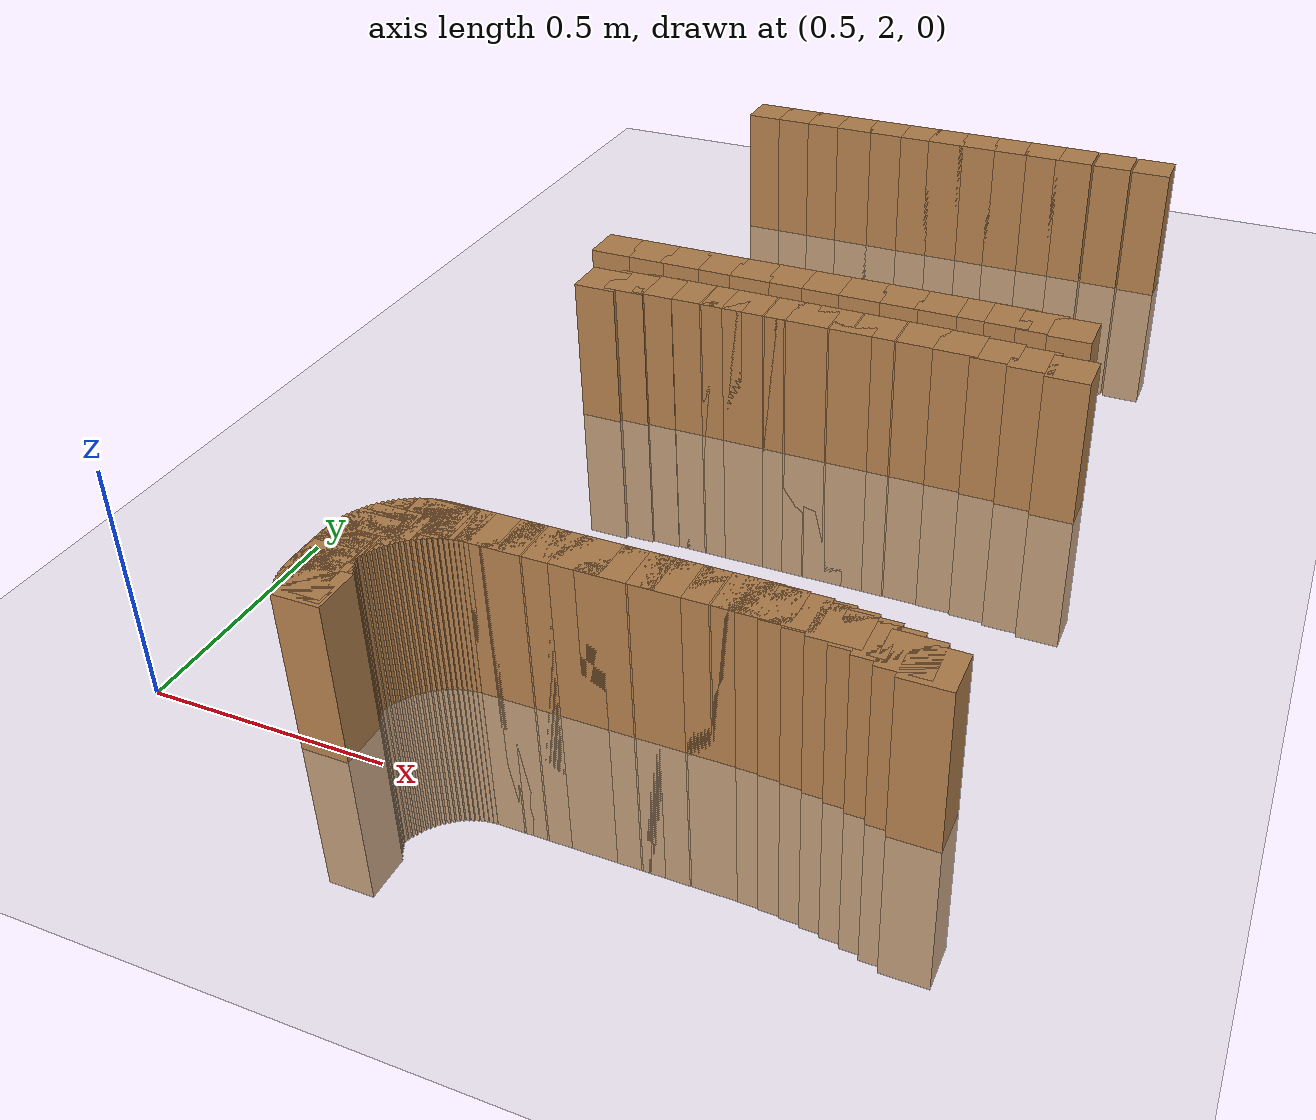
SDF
<sdf version="1.6">
 <world name="default">
  <model name="ground_plane">
   <static>1</static>
   <link name="link">
    <collision name="collision">
     <geometry><plane><normal>0 0 1</normal><size>100 100</size></plane></geometry>
     <surface><friction><ode><mu>100</mu><mu2>50</mu2></ode></friction></surface>
    </collision>
    <visual name="visual">
     <cast_shadows>0</cast_shadows>
     <geometry><plane><normal>0 0 1</normal><size>100 100</size></plane></geometry>
     <material>
      <script><uri>file://media/materials/scripts/gazebo.material</uri><name>Gazebo/Grey</name></script>
     </material>
    </visual>
   </link>
  </model>
  <model name="track">
   <link name="inner_133">
    <pose>0.815717 3.264747 0.000000 0 -0 0</pose>
    <collision name="collision"><geometry><box><size>0.1 0.1 0.7</size></box></geometry></collision>
    <visual name="visual">
     <geometry><box><size>0.1 0.1 0.7</size></box></geometry>
     <material>
      <script><uri>file://media/materials/scripts/gazebo.material</uri><name>Gazebo/Wood</name></script>
     </material>
    </visual>
   </link>
   <link name="inner_134">
    <pose>0.885120 3.275310 0.000000 0 -0 0</pose>
    <collision name="collision"><geometry><box><size>0.1 0.1 0.7</size></box></geometry></collision>
    <visual name="visual">
     <geometry><box><size>0.1 0.1 0.7</size></box></geometry>
     <material>
      <script><uri>file://media/materials/scripts/gazebo.material</uri><name>Gazebo/Wood</name></script>
     </material>
    </visual>
   </link>
   <link name="inner_135">
    <pose>0.955033 3.281663 0.000000 0 -0 0</pose>
    <collision name="collision"><geometry><box><size>0.1 0.1 0.7</size></box></geometry></collision>
    <visual name="visual">
     <geometry><box><size>0.1 0.1 0.7</size></box></geometry>
     <material>
      <script><uri>file://media/materials/scripts/gazebo.material</uri><name>Gazebo/Wood</name></script>
     </material>
    </visual>
   </link>
   <link name="inner_136">
    <pose>1.025203 3.283784 0.000000 0 -0 0</pose>
    <collision name="collision"><geometry><box><size>0.1 0.1 0.7</size></box></geometry></collision>
    <visual name="visual">
     <geometry><box><size>0.1 0.1 0.7</size></box></geometry>
     <material>
      <script><uri>file://media/materials/scripts/gazebo.material</uri><name>Gazebo/Wood</name></script>
     </material>
    </visual>
   </link>
   <link name="inner_137">
    <pose>1.076966 3.283784 0.000000 0 -0 0</pose>
    <collision name="collision"><geometry><box><size>0.1 0.1 0.7</size></box></geometry></collision>
    <visual name="visual">
     <geometry><box><size>0.1 0.1 0.7</size></box></geometry>
     <material>
      <script><uri>file://media/materials/scripts/gazebo.material</uri><name>Gazebo/Wood</name></script>
     </material>
    </visual>
   </link>
   <link name="inner_138">
    <pose>1.128729 3.283784 0.000000 0 -0 0</pose>
    <collision name="collision"><geometry><box><size>0.1 0.1 0.7</size></box></geometry></collision>
    <visual name="visual">
     <geometry><box><size>0.1 0.1 0.7</size></box></geometry>
     <material>
      <script><uri>file://media/materials/scripts/gazebo.material</uri><name>Gazebo/Wood</name></script>
     </material>
    </visual>
   </link>
   <link name="inner_139">
    <pose>1.180491 3.283784 0.000000 0 -0 0</pose>
    <collision name="collision"><geometry><box><size>0.1 0.1 0.7</size></box></geometry></collision>
    <visual name="visual">
     <geometry><box><size>0.1 0.1 0.7</size></box></geometry>
     <material>
      <script><uri>file://media/materials/scripts/gazebo.material</uri><name>Gazebo/Wood</name></script>
     </material>
    </visual>
   </link>
   <link name="inner_140">
    <pose>1.232254 3.283784 0.000000 0 -0 0</pose>
    <collision name="collision"><geometry><box><size>0.1 0.1 0.7</size></box></geometry></collision>
    <visual name="visual">
     <geometry><box><size>0.1 0.1 0.7</size></box></geometry>
     <material>
      <script><uri>file://media/materials/scripts/gazebo.material</uri><name>Gazebo/Wood</name></script>
     </material>
    </visual>
   </link>
   <link name="inner_141">
    <pose>1.284017 3.283784 0.000000 0 -0 0</pose>
    <collision name="collision"><geometry><box><size>0.1 0.1 0.7</size></box></geometry></collision>
    <visual name="visual">
     <geometry><box><size>0.1 0.1 0.7</size></box></geometry>
     <material>
      <script><uri>file://media/materials/scripts/gazebo.material</uri><name>Gazebo/Wood</name></script>
     </material>
    </visual>
   </link>
   <link name="inner_142">
    <pose>1.335780 3.283784 0.000000 0 -0 0</pose>
    <collision name="collision"><geometry><box><size>0.1 0.1 0.7</size></box></geometry></collision>
    <visual name="visual">
     <geometry><box><size>0.1 0.1 0.7</size></box></geometry>
     <material>
      <script><uri>file://media/materials/scripts/gazebo.material</uri><name>Gazebo/Wood</name></script>
     </material>
    </visual>
   </link>
   <link name="inner_143">
    <pose>1.387543 3.283784 0.000000 0 -0 0</pose>
    <collision name="collision"><geometry><box><size>0.1 0.1 0.7</size></box></geometry></collision>
    <visual name="visual">
     <geometry><box><size>0.1 0.1 0.7</size></box></geometry>
     <material>
      <script><uri>file://media/materials/scripts/gazebo.material</uri><name>Gazebo/Wood</name></script>
     </material>
    </visual>
   </link>
   <link name="inner_144">
    <pose>1.439306 3.283784 0.000000 0 -0 0</pose>
    <collision name="collision"><geometry><box><size>0.1 0.1 0.7</size></box></geometry></collision>
    <visual name="visual">
     <geometry><box><size>0.1 0.1 0.7</size></box></geometry>
     <material>
      <script><uri>file://media/materials/scripts/gazebo.material</uri><name>Gazebo/Wood</name></script>
     </material>
    </visual>
   </link>
   <link name="inner_145">
    <pose>1.491069 3.283784 0.000000 0 -0 0</pose>
    <collision name="collision"><geometry><box><size>0.1 0.1 0.7</size></box></geometry></collision>
    <visual name="visual">
     <geometry><box><size>0.1 0.1 0.7</size></box></geometry>
     <material>
      <script><uri>file://media/materials/scripts/gazebo.material</uri><name>Gazebo/Wood</name></script>
     </material>
    </visual>
   </link>
   <link name="inner_146">
    <pose>1.542832 3.283784 0.000000 0 -0 0</pose>
    <collision name="collision"><geometry><box><size>0.1 0.1 0.7</size></box></geometry></collision>
    <visual name="visual">
     <geometry><box><size>0.1 0.1 0.7</size></box></geometry>
     <material>
      <script><uri>file://media/materials/scripts/gazebo.material</uri><name>Gazebo/Wood</name></script>
     </material>
    </visual>
   </link>
   <link name="inner_147">
    <pose>1.594595 3.283784 0.000000 0 -0 0</pose>
    <collision name="collision"><geometry><box><size>0.1 0.1 0.7</size></box></geometry></collision>
    <visual name="visual">
     <geometry><box><size>0.1 0.1 0.7</size></box></geometry>
     <material>
      <script><uri>file://media/materials/scripts/gazebo.material</uri><name>Gazebo/Wood</name></script>
     </material>
    </visual>
   </link>
   <link name="inner_148">
    <pose>1.678391 3.282096 0.000000 0 -0 0</pose>
    <collision name="collision"><geometry><box><size>0.1 0.1 0.7</size></box></geometry></collision>
    <visual name="visual">
     <geometry><box><size>0.1 0.1 0.7</size></box></geometry>
     <material>
      <script><uri>file://media/materials/scripts/gazebo.material</uri><name>Gazebo/Wood</name></script>
     </material>
    </visual>
   </link>
   <link name="inner_149">
    <pose>1.762052 3.277035 0.000000 0 -0 0</pose>
    <collision name="collision"><geometry><box><size>0.1 0.1 0.7</size></box></geometry></collision>
    <visual name="visual">
     <geometry><box><size>0.1 0.1 0.7</size></box></geometry>
     <material>
      <script><uri>file://media/materials/scripts/gazebo.material</uri><name>Gazebo/Wood</name></script>
     </material>
    </visual>
   </link>
   <link name="inner_150">
    <pose>1.845441 3.268610 0.000000 0 -0 0</pose>
    <collision name="collision"><geometry><box><size>0.1 0.1 0.7</size></box></geometry></collision>
    <visual name="visual">
     <geometry><box><size>0.1 0.1 0.7</size></box></geometry>
     <material>
      <script><uri>file://media/materials/scripts/gazebo.material</uri><name>Gazebo/Wood</name></script>
     </material>
    </visual>
   </link>
   <link name="inner_151">
    <pose>1.928423 3.256834 0.000000 0 -0 0</pose>
    <collision name="collision"><geometry><box><size>0.1 0.1 0.7</size></box></geometry></collision>
    <visual name="visual">
     <geometry><box><size>0.1 0.1 0.7</size></box></geometry>
     <material>
      <script><uri>file://media/materials/scripts/gazebo.material</uri><name>Gazebo/Wood</name></script>
     </material>
    </visual>
   </link>
   <link name="inner_607">
    <pose>1.892099 3.435087 0.000000 0 -0 0</pose>
    <collision name="collision"><geometry><box><size>0.1 0.1 0.7</size></box></geometry></collision>
    <visual name="visual">
     <geometry><box><size>0.1 0.1 0.7</size></box></geometry>
     <material>
      <script><uri>file://media/materials/scripts/gazebo.material</uri><name>Gazebo/Wood</name></script>
     </material>
    </visual>
   </link>
   <link name="inner_608">
    <pose>1.820092 3.441118 0.000000 0 -0 0</pose>
    <collision name="collision"><geometry><box><size>0.1 0.1 0.7</size></box></geometry></collision>
    <visual name="visual">
     <geometry><box><size>0.1 0.1 0.7</size></box></geometry>
     <material>
      <script><uri>file://media/materials/scripts/gazebo.material</uri><name>Gazebo/Wood</name></script>
     </material>
    </visual>
   </link>
   <link name="inner_609">
    <pose>1.747924 3.444739 0.000000 0 -0 0</pose>
    <collision name="collision"><geometry><box><size>0.1 0.1 0.7</size></box></geometry></collision>
    <visual name="visual">
     <geometry><box><size>0.1 0.1 0.7</size></box></geometry>
     <material>
      <script><uri>file://media/materials/scripts/gazebo.material</uri><name>Gazebo/Wood</name></script>
     </material>
    </visual>
   </link>
   <link name="inner_610">
    <pose>1.675676 3.445946 0.000000 0 -0 0</pose>
    <collision name="collision"><geometry><box><size>0.1 0.1 0.7</size></box></geometry></collision>
    <visual name="visual">
     <geometry><box><size>0.1 0.1 0.7</size></box></geometry>
     <material>
      <script><uri>file://media/materials/scripts/gazebo.material</uri><name>Gazebo/Wood</name></script>
     </material>
    </visual>
   </link>
   <link name="inner_611">
    <pose>1.584797 3.445946 0.000000 0 -0 0</pose>
    <collision name="collision"><geometry><box><size>0.1 0.1 0.7</size></box></geometry></collision>
    <visual name="visual">
     <geometry><box><size>0.1 0.1 0.7</size></box></geometry>
     <material>
      <script><uri>file://media/materials/scripts/gazebo.material</uri><name>Gazebo/Wood</name></script>
     </material>
    </visual>
   </link>
   <link name="inner_612">
    <pose>1.493919 3.445946 0.000000 0 -0 0</pose>
    <collision name="collision"><geometry><box><size>0.1 0.1 0.7</size></box></geometry></collision>
    <visual name="visual">
     <geometry><box><size>0.1 0.1 0.7</size></box></geometry>
     <material>
      <script><uri>file://media/materials/scripts/gazebo.material</uri><name>Gazebo/Wood</name></script>
     </material>
    </visual>
   </link>
   <link name="inner_613">
    <pose>1.403041 3.445946 0.000000 0 -0 0</pose>
    <collision name="collision"><geometry><box><size>0.1 0.1 0.7</size></box></geometry></collision>
    <visual name="visual">
     <geometry><box><size>0.1 0.1 0.7</size></box></geometry>
     <material>
      <script><uri>file://media/materials/scripts/gazebo.material</uri><name>Gazebo/Wood</name></script>
     </material>
    </visual>
   </link>
   <link name="inner_614">
    <pose>1.312162 3.445946 0.000000 0 -0 0</pose>
    <collision name="collision"><geometry><box><size>0.1 0.1 0.7</size></box></geometry></collision>
    <visual name="visual">
     <geometry><box><size>0.1 0.1 0.7</size></box></geometry>
     <material>
      <script><uri>file://media/materials/scripts/gazebo.material</uri><name>Gazebo/Wood</name></script>
     </material>
    </visual>
   </link>
   <link name="inner_615">
    <pose>1.221284 3.445946 0.000000 0 -0 0</pose>
    <collision name="collision"><geometry><box><size>0.1 0.1 0.7</size></box></geometry></collision>
    <visual name="visual">
     <geometry><box><size>0.1 0.1 0.7</size></box></geometry>
     <material>
      <script><uri>file://media/materials/scripts/gazebo.material</uri><name>Gazebo/Wood</name></script>
     </material>
    </visual>
   </link>
   <link name="inner_616">
    <pose>1.130405 3.445946 0.000000 0 -0 0</pose>
    <collision name="collision"><geometry><box><size>0.1 0.1 0.7</size></box></geometry></collision>
    <visual name="visual">
     <geometry><box><size>0.1 0.1 0.7</size></box></geometry>
     <material>
      <script><uri>file://media/materials/scripts/gazebo.material</uri><name>Gazebo/Wood</name></script>
     </material>
    </visual>
   </link>
   <link name="inner_617">
    <pose>1.039527 3.445946 0.000000 0 -0 0</pose>
    <collision name="collision"><geometry><box><size>0.1 0.1 0.7</size></box></geometry></collision>
    <visual name="visual">
     <geometry><box><size>0.1 0.1 0.7</size></box></geometry>
     <material>
      <script><uri>file://media/materials/scripts/gazebo.material</uri><name>Gazebo/Wood</name></script>
     </material>
    </visual>
   </link>
   <link name="inner_618">
    <pose>0.948649 3.445946 0.000000 0 -0 0</pose>
    <collision name="collision"><geometry><box><size>0.1 0.1 0.7</size></box></geometry></collision>
    <visual name="visual">
     <geometry><box><size>0.1 0.1 0.7</size></box></geometry>
     <material>
      <script><uri>file://media/materials/scripts/gazebo.material</uri><name>Gazebo/Wood</name></script>
     </material>
    </visual>
   </link>
   <link name="inner_619">
    <pose>0.857770 3.445946 0.000000 0 -0 0</pose>
    <collision name="collision"><geometry><box><size>0.1 0.1 0.7</size></box></geometry></collision>
    <visual name="visual">
     <geometry><box><size>0.1 0.1 0.7</size></box></geometry>
     <material>
      <script><uri>file://media/materials/scripts/gazebo.material</uri><name>Gazebo/Wood</name></script>
     </material>
    </visual>
   </link>
   <link name="inner_620">
    <pose>0.766892 3.445946 0.000000 0 -0 0</pose>
    <collision name="collision"><geometry><box><size>0.1 0.1 0.7</size></box></geometry></collision>
    <visual name="visual">
     <geometry><box><size>0.1 0.1 0.7</size></box></geometry>
     <material>
      <script><uri>file://media/materials/scripts/gazebo.material</uri><name>Gazebo/Wood</name></script>
     </material>
    </visual>
   </link>
   <link name="outer_100">
    <pose>0.891746 2.029503 0.000000 0 -0 0</pose>
    <collision name="collision"><geometry><box><size>0.1 0.1 0.7</size></box></geometry></collision>
    <visual name="visual">
     <geometry><box><size>0.1 0.1 0.7</size></box></geometry>
     <material>
      <script><uri>file://media/materials/scripts/gazebo.material</uri><name>Gazebo/Wood</name></script>
     </material>
    </visual>
   </link>
   <link name="outer_101">
    <pose>0.886427 2.037729 0.000000 0 -0 0</pose>
    <collision name="collision"><geometry><box><size>0.1 0.1 0.7</size></box></geometry></collision>
    <visual name="visual">
     <geometry><box><size>0.1 0.1 0.7</size></box></geometry>
     <material>
      <script><uri>file://media/materials/scripts/gazebo.material</uri><name>Gazebo/Wood</name></script>
     </material>
    </visual>
   </link>
   <link name="outer_102">
    <pose>0.881615 2.046261 0.000000 0 -0 0</pose>
    <collision name="collision"><geometry><box><size>0.1 0.1 0.7</size></box></geometry></collision>
    <visual name="visual">
     <geometry><box><size>0.1 0.1 0.7</size></box></geometry>
     <material>
      <script><uri>file://media/materials/scripts/gazebo.material</uri><name>Gazebo/Wood</name></script>
     </material>
    </visual>
   </link>
   <link name="outer_103">
    <pose>0.877327 2.055068 0.000000 0 -0 0</pose>
    <collision name="collision"><geometry><box><size>0.1 0.1 0.7</size></box></geometry></collision>
    <visual name="visual">
     <geometry><box><size>0.1 0.1 0.7</size></box></geometry>
     <material>
      <script><uri>file://media/materials/scripts/gazebo.material</uri><name>Gazebo/Wood</name></script>
     </material>
    </visual>
   </link>
   <link name="outer_104">
    <pose>0.873579 2.064118 0.000000 0 -0 0</pose>
    <collision name="collision"><geometry><box><size>0.1 0.1 0.7</size></box></geometry></collision>
    <visual name="visual">
     <geometry><box><size>0.1 0.1 0.7</size></box></geometry>
     <material>
      <script><uri>file://media/materials/scripts/gazebo.material</uri><name>Gazebo/Wood</name></script>
     </material>
    </visual>
   </link>
   <link name="outer_105">
    <pose>0.870383 2.073378 0.000000 0 -0 0</pose>
    <collision name="collision"><geometry><box><size>0.1 0.1 0.7</size></box></geometry></collision>
    <visual name="visual">
     <geometry><box><size>0.1 0.1 0.7</size></box></geometry>
     <material>
      <script><uri>file://media/materials/scripts/gazebo.material</uri><name>Gazebo/Wood</name></script>
     </material>
    </visual>
   </link>
   <link name="outer_106">
    <pose>0.867753 2.082814 0.000000 0 -0 0</pose>
    <collision name="collision"><geometry><box><size>0.1 0.1 0.7</size></box></geometry></collision>
    <visual name="visual">
     <geometry><box><size>0.1 0.1 0.7</size></box></geometry>
     <material>
      <script><uri>file://media/materials/scripts/gazebo.material</uri><name>Gazebo/Wood</name></script>
     </material>
    </visual>
   </link>
   <link name="outer_107">
    <pose>0.865697 2.092391 0.000000 0 -0 0</pose>
    <collision name="collision"><geometry><box><size>0.1 0.1 0.7</size></box></geometry></collision>
    <visual name="visual">
     <geometry><box><size>0.1 0.1 0.7</size></box></geometry>
     <material>
      <script><uri>file://media/materials/scripts/gazebo.material</uri><name>Gazebo/Wood</name></script>
     </material>
    </visual>
   </link>
   <link name="outer_108">
    <pose>0.864223 2.102075 0.000000 0 -0 0</pose>
    <collision name="collision"><geometry><box><size>0.1 0.1 0.7</size></box></geometry></collision>
    <visual name="visual">
     <geometry><box><size>0.1 0.1 0.7</size></box></geometry>
     <material>
      <script><uri>file://media/materials/scripts/gazebo.material</uri><name>Gazebo/Wood</name></script>
     </material>
    </visual>
   </link>
   <link name="outer_109">
    <pose>0.863336 2.111831 0.000000 0 -0 0</pose>
    <collision name="collision"><geometry><box><size>0.1 0.1 0.7</size></box></geometry></collision>
    <visual name="visual">
     <geometry><box><size>0.1 0.1 0.7</size></box></geometry>
     <material>
      <script><uri>file://media/materials/scripts/gazebo.material</uri><name>Gazebo/Wood</name></script>
     </material>
    </visual>
   </link>
   <link name="outer_110">
    <pose>0.863041 2.121622 0.000000 0 -0 0</pose>
    <collision name="collision"><geometry><box><size>0.1 0.1 0.7</size></box></geometry></collision>
    <visual name="visual">
     <geometry><box><size>0.1 0.1 0.7</size></box></geometry>
     <material>
      <script><uri>file://media/materials/scripts/gazebo.material</uri><name>Gazebo/Wood</name></script>
     </material>
    </visual>
   </link>
   <link name="outer_111">
    <pose>0.863336 2.131413 0.000000 0 -0 0</pose>
    <collision name="collision"><geometry><box><size>0.1 0.1 0.7</size></box></geometry></collision>
    <visual name="visual">
     <geometry><box><size>0.1 0.1 0.7</size></box></geometry>
     <material>
      <script><uri>file://media/materials/scripts/gazebo.material</uri><name>Gazebo/Wood</name></script>
     </material>
    </visual>
   </link>
   <link name="outer_112">
    <pose>0.864223 2.141168 0.000000 0 -0 0</pose>
    <collision name="collision"><geometry><box><size>0.1 0.1 0.7</size></box></geometry></collision>
    <visual name="visual">
     <geometry><box><size>0.1 0.1 0.7</size></box></geometry>
     <material>
      <script><uri>file://media/materials/scripts/gazebo.material</uri><name>Gazebo/Wood</name></script>
     </material>
    </visual>
   </link>
   <link name="outer_113">
    <pose>0.865697 2.150852 0.000000 0 -0 0</pose>
    <collision name="collision"><geometry><box><size>0.1 0.1 0.7</size></box></geometry></collision>
    <visual name="visual">
     <geometry><box><size>0.1 0.1 0.7</size></box></geometry>
     <material>
      <script><uri>file://media/materials/scripts/gazebo.material</uri><name>Gazebo/Wood</name></script>
     </material>
    </visual>
   </link>
   <link name="outer_114">
    <pose>0.867753 2.160430 0.000000 0 -0 0</pose>
    <collision name="collision"><geometry><box><size>0.1 0.1 0.7</size></box></geometry></collision>
    <visual name="visual">
     <geometry><box><size>0.1 0.1 0.7</size></box></geometry>
     <material>
      <script><uri>file://media/materials/scripts/gazebo.material</uri><name>Gazebo/Wood</name></script>
     </material>
    </visual>
   </link>
   <link name="outer_115">
    <pose>0.870383 2.169865 0.000000 0 -0 0</pose>
    <collision name="collision"><geometry><box><size>0.1 0.1 0.7</size></box></geometry></collision>
    <visual name="visual">
     <geometry><box><size>0.1 0.1 0.7</size></box></geometry>
     <material>
      <script><uri>file://media/materials/scripts/gazebo.material</uri><name>Gazebo/Wood</name></script>
     </material>
    </visual>
   </link>
   <link name="outer_116">
    <pose>0.873579 2.179125 0.000000 0 -0 0</pose>
    <collision name="collision"><geometry><box><size>0.1 0.1 0.7</size></box></geometry></collision>
    <visual name="visual">
     <geometry><box><size>0.1 0.1 0.7</size></box></geometry>
     <material>
      <script><uri>file://media/materials/scripts/gazebo.material</uri><name>Gazebo/Wood</name></script>
     </material>
    </visual>
   </link>
   <link name="outer_117">
    <pose>0.877327 2.188175 0.000000 0 -0 0</pose>
    <collision name="collision"><geometry><box><size>0.1 0.1 0.7</size></box></geometry></collision>
    <visual name="visual">
     <geometry><box><size>0.1 0.1 0.7</size></box></geometry>
     <material>
      <script><uri>file://media/materials/scripts/gazebo.material</uri><name>Gazebo/Wood</name></script>
     </material>
    </visual>
   </link>
   <link name="outer_118">
    <pose>0.881615 2.196982 0.000000 0 -0 0</pose>
    <collision name="collision"><geometry><box><size>0.1 0.1 0.7</size></box></geometry></collision>
    <visual name="visual">
     <geometry><box><size>0.1 0.1 0.7</size></box></geometry>
     <material>
      <script><uri>file://media/materials/scripts/gazebo.material</uri><name>Gazebo/Wood</name></script>
     </material>
    </visual>
   </link>
   <link name="outer_119">
    <pose>0.886427 2.205514 0.000000 0 -0 0</pose>
    <collision name="collision"><geometry><box><size>0.1 0.1 0.7</size></box></geometry></collision>
    <visual name="visual">
     <geometry><box><size>0.1 0.1 0.7</size></box></geometry>
     <material>
      <script><uri>file://media/materials/scripts/gazebo.material</uri><name>Gazebo/Wood</name></script>
     </material>
    </visual>
   </link>
   <link name="outer_120">
    <pose>0.891746 2.213740 0.000000 0 -0 0</pose>
    <collision name="collision"><geometry><box><size>0.1 0.1 0.7</size></box></geometry></collision>
    <visual name="visual">
     <geometry><box><size>0.1 0.1 0.7</size></box></geometry>
     <material>
      <script><uri>file://media/materials/scripts/gazebo.material</uri><name>Gazebo/Wood</name></script>
     </material>
    </visual>
   </link>
   <link name="outer_121">
    <pose>0.897551 2.221630 0.000000 0 -0 0</pose>
    <collision name="collision"><geometry><box><size>0.1 0.1 0.7</size></box></geometry></collision>
    <visual name="visual">
     <geometry><box><size>0.1 0.1 0.7</size></box></geometry>
     <material>
      <script><uri>file://media/materials/scripts/gazebo.material</uri><name>Gazebo/Wood</name></script>
     </material>
    </visual>
   </link>
   <link name="outer_122">
    <pose>0.903823 2.229155 0.000000 0 -0 0</pose>
    <collision name="collision"><geometry><box><size>0.1 0.1 0.7</size></box></geometry></collision>
    <visual name="visual">
     <geometry><box><size>0.1 0.1 0.7</size></box></geometry>
     <material>
      <script><uri>file://media/materials/scripts/gazebo.material</uri><name>Gazebo/Wood</name></script>
     </material>
    </visual>
   </link>
   <link name="outer_123">
    <pose>0.910537 2.236288 0.000000 0 -0 0</pose>
    <collision name="collision"><geometry><box><size>0.1 0.1 0.7</size></box></geometry></collision>
    <visual name="visual">
     <geometry><box><size>0.1 0.1 0.7</size></box></geometry>
     <material>
      <script><uri>file://media/materials/scripts/gazebo.material</uri><name>Gazebo/Wood</name></script>
     </material>
    </visual>
   </link>
   <link name="outer_124">
    <pose>0.917669 2.243002 0.000000 0 -0 0</pose>
    <collision name="collision"><geometry><box><size>0.1 0.1 0.7</size></box></geometry></collision>
    <visual name="visual">
     <geometry><box><size>0.1 0.1 0.7</size></box></geometry>
     <material>
      <script><uri>file://media/materials/scripts/gazebo.material</uri><name>Gazebo/Wood</name></script>
     </material>
    </visual>
   </link>
   <link name="outer_125">
    <pose>0.925194 2.249273 0.000000 0 -0 0</pose>
    <collision name="collision"><geometry><box><size>0.1 0.1 0.7</size></box></geometry></collision>
    <visual name="visual">
     <geometry><box><size>0.1 0.1 0.7</size></box></geometry>
     <material>
      <script><uri>file://media/materials/scripts/gazebo.material</uri><name>Gazebo/Wood</name></script>
     </material>
    </visual>
   </link>
   <link name="outer_126">
    <pose>0.933084 2.255078 0.000000 0 -0 0</pose>
    <collision name="collision"><geometry><box><size>0.1 0.1 0.7</size></box></geometry></collision>
    <visual name="visual">
     <geometry><box><size>0.1 0.1 0.7</size></box></geometry>
     <material>
      <script><uri>file://media/materials/scripts/gazebo.material</uri><name>Gazebo/Wood</name></script>
     </material>
    </visual>
   </link>
   <link name="outer_127">
    <pose>0.941310 2.260397 0.000000 0 -0 0</pose>
    <collision name="collision"><geometry><box><size>0.1 0.1 0.7</size></box></geometry></collision>
    <visual name="visual">
     <geometry><box><size>0.1 0.1 0.7</size></box></geometry>
     <material>
      <script><uri>file://media/materials/scripts/gazebo.material</uri><name>Gazebo/Wood</name></script>
     </material>
    </visual>
   </link>
   <link name="outer_128">
    <pose>0.949842 2.265209 0.000000 0 -0 0</pose>
    <collision name="collision"><geometry><box><size>0.1 0.1 0.7</size></box></geometry></collision>
    <visual name="visual">
     <geometry><box><size>0.1 0.1 0.7</size></box></geometry>
     <material>
      <script><uri>file://media/materials/scripts/gazebo.material</uri><name>Gazebo/Wood</name></script>
     </material>
    </visual>
   </link>
   <link name="outer_129">
    <pose>0.958649 2.269497 0.000000 0 -0 0</pose>
    <collision name="collision"><geometry><box><size>0.1 0.1 0.7</size></box></geometry></collision>
    <visual name="visual">
     <geometry><box><size>0.1 0.1 0.7</size></box></geometry>
     <material>
      <script><uri>file://media/materials/scripts/gazebo.material</uri><name>Gazebo/Wood</name></script>
     </material>
    </visual>
   </link>
   <link name="outer_130">
    <pose>0.967699 2.273246 0.000000 0 -0 0</pose>
    <collision name="collision"><geometry><box><size>0.1 0.1 0.7</size></box></geometry></collision>
    <visual name="visual">
     <geometry><box><size>0.1 0.1 0.7</size></box></geometry>
     <material>
      <script><uri>file://media/materials/scripts/gazebo.material</uri><name>Gazebo/Wood</name></script>
     </material>
    </visual>
   </link>
   <link name="outer_131">
    <pose>0.976959 2.276441 0.000000 0 -0 0</pose>
    <collision name="collision"><geometry><box><size>0.1 0.1 0.7</size></box></geometry></collision>
    <visual name="visual">
     <geometry><box><size>0.1 0.1 0.7</size></box></geometry>
     <material>
      <script><uri>file://media/materials/scripts/gazebo.material</uri><name>Gazebo/Wood</name></script>
     </material>
    </visual>
   </link>
   <link name="outer_132">
    <pose>0.986395 2.279072 0.000000 0 -0 0</pose>
    <collision name="collision"><geometry><box><size>0.1 0.1 0.7</size></box></geometry></collision>
    <visual name="visual">
     <geometry><box><size>0.1 0.1 0.7</size></box></geometry>
     <material>
      <script><uri>file://media/materials/scripts/gazebo.material</uri><name>Gazebo/Wood</name></script>
     </material>
    </visual>
   </link>
   <link name="outer_133">
    <pose>0.995972 2.281128 0.000000 0 -0 0</pose>
    <collision name="collision"><geometry><box><size>0.1 0.1 0.7</size></box></geometry></collision>
    <visual name="visual">
     <geometry><box><size>0.1 0.1 0.7</size></box></geometry>
     <material>
      <script><uri>file://media/materials/scripts/gazebo.material</uri><name>Gazebo/Wood</name></script>
     </material>
    </visual>
   </link>
   <link name="outer_134">
    <pose>1.005656 2.282601 0.000000 0 -0 0</pose>
    <collision name="collision"><geometry><box><size>0.1 0.1 0.7</size></box></geometry></collision>
    <visual name="visual">
     <geometry><box><size>0.1 0.1 0.7</size></box></geometry>
     <material>
      <script><uri>file://media/materials/scripts/gazebo.material</uri><name>Gazebo/Wood</name></script>
     </material>
    </visual>
   </link>
   <link name="outer_135">
    <pose>1.015412 2.283488 0.000000 0 -0 0</pose>
    <collision name="collision"><geometry><box><size>0.1 0.1 0.7</size></box></geometry></collision>
    <visual name="visual">
     <geometry><box><size>0.1 0.1 0.7</size></box></geometry>
     <material>
      <script><uri>file://media/materials/scripts/gazebo.material</uri><name>Gazebo/Wood</name></script>
     </material>
    </visual>
   </link>
   <link name="outer_136">
    <pose>1.025203 2.283784 0.000000 0 -0 0</pose>
    <collision name="collision"><geometry><box><size>0.1 0.1 0.7</size></box></geometry></collision>
    <visual name="visual">
     <geometry><box><size>0.1 0.1 0.7</size></box></geometry>
     <material>
      <script><uri>file://media/materials/scripts/gazebo.material</uri><name>Gazebo/Wood</name></script>
     </material>
    </visual>
   </link>
   <link name="outer_137">
    <pose>1.076966 2.283784 0.000000 0 -0 0</pose>
    <collision name="collision"><geometry><box><size>0.1 0.1 0.7</size></box></geometry></collision>
    <visual name="visual">
     <geometry><box><size>0.1 0.1 0.7</size></box></geometry>
     <material>
      <script><uri>file://media/materials/scripts/gazebo.material</uri><name>Gazebo/Wood</name></script>
     </material>
    </visual>
   </link>
   <link name="outer_138">
    <pose>1.128729 2.283784 0.000000 0 -0 0</pose>
    <collision name="collision"><geometry><box><size>0.1 0.1 0.7</size></box></geometry></collision>
    <visual name="visual">
     <geometry><box><size>0.1 0.1 0.7</size></box></geometry>
     <material>
      <script><uri>file://media/materials/scripts/gazebo.material</uri><name>Gazebo/Wood</name></script>
     </material>
    </visual>
   </link>
   <link name="outer_139">
    <pose>1.180491 2.283784 0.000000 0 -0 0</pose>
    <collision name="collision"><geometry><box><size>0.1 0.1 0.7</size></box></geometry></collision>
    <visual name="visual">
     <geometry><box><size>0.1 0.1 0.7</size></box></geometry>
     <material>
      <script><uri>file://media/materials/scripts/gazebo.material</uri><name>Gazebo/Wood</name></script>
     </material>
    </visual>
   </link>
   <link name="outer_140">
    <pose>1.232254 2.283784 0.000000 0 -0 0</pose>
    <collision name="collision"><geometry><box><size>0.1 0.1 0.7</size></box></geometry></collision>
    <visual name="visual">
     <geometry><box><size>0.1 0.1 0.7</size></box></geometry>
     <material>
      <script><uri>file://media/materials/scripts/gazebo.material</uri><name>Gazebo/Wood</name></script>
     </material>
    </visual>
   </link>
   <link name="outer_141">
    <pose>1.284017 2.283784 0.000000 0 -0 0</pose>
    <collision name="collision"><geometry><box><size>0.1 0.1 0.7</size></box></geometry></collision>
    <visual name="visual">
     <geometry><box><size>0.1 0.1 0.7</size></box></geometry>
     <material>
      <script><uri>file://media/materials/scripts/gazebo.material</uri><name>Gazebo/Wood</name></script>
     </material>
    </visual>
   </link>
   <link name="outer_142">
    <pose>1.335780 2.283784 0.000000 0 -0 0</pose>
    <collision name="collision"><geometry><box><size>0.1 0.1 0.7</size></box></geometry></collision>
    <visual name="visual">
     <geometry><box><size>0.1 0.1 0.7</size></box></geometry>
     <material>
      <script><uri>file://media/materials/scripts/gazebo.material</uri><name>Gazebo/Wood</name></script>
     </material>
    </visual>
   </link>
   <link name="outer_143">
    <pose>1.387543 2.283784 0.000000 0 -0 0</pose>
    <collision name="collision"><geometry><box><size>0.1 0.1 0.7</size></box></geometry></collision>
    <visual name="visual">
     <geometry><box><size>0.1 0.1 0.7</size></box></geometry>
     <material>
      <script><uri>file://media/materials/scripts/gazebo.material</uri><name>Gazebo/Wood</name></script>
     </material>
    </visual>
   </link>
   <link name="outer_144">
    <pose>1.439306 2.283784 0.000000 0 -0 0</pose>
    <collision name="collision"><geometry><box><size>0.1 0.1 0.7</size></box></geometry></collision>
    <visual name="visual">
     <geometry><box><size>0.1 0.1 0.7</size></box></geometry>
     <material>
      <script><uri>file://media/materials/scripts/gazebo.material</uri><name>Gazebo/Wood</name></script>
     </material>
    </visual>
   </link>
   <link name="outer_145">
    <pose>1.491069 2.283784 0.000000 0 -0 0</pose>
    <collision name="collision"><geometry><box><size>0.1 0.1 0.7</size></box></geometry></collision>
    <visual name="visual">
     <geometry><box><size>0.1 0.1 0.7</size></box></geometry>
     <material>
      <script><uri>file://media/materials/scripts/gazebo.material</uri><name>Gazebo/Wood</name></script>
     </material>
    </visual>
   </link>
   <link name="outer_146">
    <pose>1.542832 2.283784 0.000000 0 -0 0</pose>
    <collision name="collision"><geometry><box><size>0.1 0.1 0.7</size></box></geometry></collision>
    <visual name="visual">
     <geometry><box><size>0.1 0.1 0.7</size></box></geometry>
     <material>
      <script><uri>file://media/materials/scripts/gazebo.material</uri><name>Gazebo/Wood</name></script>
     </material>
    </visual>
   </link>
   <link name="outer_147">
    <pose>1.594595 2.283784 0.000000 0 -0 0</pose>
    <collision name="collision"><geometry><box><size>0.1 0.1 0.7</size></box></geometry></collision>
    <visual name="visual">
     <geometry><box><size>0.1 0.1 0.7</size></box></geometry>
     <material>
      <script><uri>file://media/materials/scripts/gazebo.material</uri><name>Gazebo/Wood</name></script>
     </material>
    </visual>
   </link>
   <link name="outer_148">
    <pose>1.638125 2.282907 0.000000 0 -0 0</pose>
    <collision name="collision"><geometry><box><size>0.1 0.1 0.7</size></box></geometry></collision>
    <visual name="visual">
     <geometry><box><size>0.1 0.1 0.7</size></box></geometry>
     <material>
      <script><uri>file://media/materials/scripts/gazebo.material</uri><name>Gazebo/Wood</name></script>
     </material>
    </visual>
   </link>
   <link name="outer_149">
    <pose>1.681585 2.280278 0.000000 0 -0 0</pose>
    <collision name="collision"><geometry><box><size>0.1 0.1 0.7</size></box></geometry></collision>
    <visual name="visual">
     <geometry><box><size>0.1 0.1 0.7</size></box></geometry>
     <material>
      <script><uri>file://media/materials/scripts/gazebo.material</uri><name>Gazebo/Wood</name></script>
     </material>
    </visual>
   </link>
   <link name="outer_150">
    <pose>1.724905 2.275901 0.000000 0 -0 0</pose>
    <collision name="collision"><geometry><box><size>0.1 0.1 0.7</size></box></geometry></collision>
    <visual name="visual">
     <geometry><box><size>0.1 0.1 0.7</size></box></geometry>
     <material>
      <script><uri>file://media/materials/scripts/gazebo.material</uri><name>Gazebo/Wood</name></script>
     </material>
    </visual>
   </link>
   <link name="outer_151">
    <pose>1.768012 2.269784 0.000000 0 -0 0</pose>
    <collision name="collision"><geometry><box><size>0.1 0.1 0.7</size></box></geometry></collision>
    <visual name="visual">
     <geometry><box><size>0.1 0.1 0.7</size></box></geometry>
     <material>
      <script><uri>file://media/materials/scripts/gazebo.material</uri><name>Gazebo/Wood</name></script>
     </material>
    </visual>
   </link>
   <link name="outer_152">
    <pose>1.810839 2.261936 0.000000 0 -0 0</pose>
    <collision name="collision"><geometry><box><size>0.1 0.1 0.7</size></box></geometry></collision>
    <visual name="visual">
     <geometry><box><size>0.1 0.1 0.7</size></box></geometry>
     <material>
      <script><uri>file://media/materials/scripts/gazebo.material</uri><name>Gazebo/Wood</name></script>
     </material>
    </visual>
   </link>
   <link name="outer_153">
    <pose>1.853314 2.252370 0.000000 0 -0 0</pose>
    <collision name="collision"><geometry><box><size>0.1 0.1 0.7</size></box></geometry></collision>
    <visual name="visual">
     <geometry><box><size>0.1 0.1 0.7</size></box></geometry>
     <material>
      <script><uri>file://media/materials/scripts/gazebo.material</uri><name>Gazebo/Wood</name></script>
     </material>
    </visual>
   </link>
   <link name="outer_154">
    <pose>1.895370 2.241101 0.000000 0 -0 0</pose>
    <collision name="collision"><geometry><box><size>0.1 0.1 0.7</size></box></geometry></collision>
    <visual name="visual">
     <geometry><box><size>0.1 0.1 0.7</size></box></geometry>
     <material>
      <script><uri>file://media/materials/scripts/gazebo.material</uri><name>Gazebo/Wood</name></script>
     </material>
    </visual>
   </link>
   <link name="outer_155">
    <pose>1.936938 2.228148 0.000000 0 -0 0</pose>
    <collision name="collision"><geometry><box><size>0.1 0.1 0.7</size></box></geometry></collision>
    <visual name="visual">
     <geometry><box><size>0.1 0.1 0.7</size></box></geometry>
     <material>
      <script><uri>file://media/materials/scripts/gazebo.material</uri><name>Gazebo/Wood</name></script>
     </material>
    </visual>
   </link>
   <link name="outer_608">
    <pose>1.886885 4.438884 0.000000 0 -0 0</pose>
    <collision name="collision"><geometry><box><size>0.1 0.1 0.7</size></box></geometry></collision>
    <visual name="visual">
     <geometry><box><size>0.1 0.1 0.7</size></box></geometry>
     <material>
      <script><uri>file://media/materials/scripts/gazebo.material</uri><name>Gazebo/Wood</name></script>
     </material>
    </visual>
   </link>
   <link name="outer_609">
    <pose>1.781339 4.444180 0.000000 0 -0 0</pose>
    <collision name="collision"><geometry><box><size>0.1 0.1 0.7</size></box></geometry></collision>
    <visual name="visual">
     <geometry><box><size>0.1 0.1 0.7</size></box></geometry>
     <material>
      <script><uri>file://media/materials/scripts/gazebo.material</uri><name>Gazebo/Wood</name></script>
     </material>
    </visual>
   </link>
   <link name="outer_610">
    <pose>1.675676 4.445946 0.000000 0 -0 0</pose>
    <collision name="collision"><geometry><box><size>0.1 0.1 0.7</size></box></geometry></collision>
    <visual name="visual">
     <geometry><box><size>0.1 0.1 0.7</size></box></geometry>
     <material>
      <script><uri>file://media/materials/scripts/gazebo.material</uri><name>Gazebo/Wood</name></script>
     </material>
    </visual>
   </link>
   <link name="outer_611">
    <pose>1.584797 4.445946 0.000000 0 -0 0</pose>
    <collision name="collision"><geometry><box><size>0.1 0.1 0.7</size></box></geometry></collision>
    <visual name="visual">
     <geometry><box><size>0.1 0.1 0.7</size></box></geometry>
     <material>
      <script><uri>file://media/materials/scripts/gazebo.material</uri><name>Gazebo/Wood</name></script>
     </material>
    </visual>
   </link>
   <link name="outer_612">
    <pose>1.493919 4.445946 0.000000 0 -0 0</pose>
    <collision name="collision"><geometry><box><size>0.1 0.1 0.7</size></box></geometry></collision>
    <visual name="visual">
     <geometry><box><size>0.1 0.1 0.7</size></box></geometry>
     <material>
      <script><uri>file://media/materials/scripts/gazebo.material</uri><name>Gazebo/Wood</name></script>
     </material>
    </visual>
   </link>
   <link name="outer_613">
    <pose>1.403041 4.445946 0.000000 0 -0 0</pose>
    <collision name="collision"><geometry><box><size>0.1 0.1 0.7</size></box></geometry></collision>
    <visual name="visual">
     <geometry><box><size>0.1 0.1 0.7</size></box></geometry>
     <material>
      <script><uri>file://media/materials/scripts/gazebo.material</uri><name>Gazebo/Wood</name></script>
     </material>
    </visual>
   </link>
   <link name="outer_614">
    <pose>1.312162 4.445946 0.000000 0 -0 0</pose>
    <collision name="collision"><geometry><box><size>0.1 0.1 0.7</size></box></geometry></collision>
    <visual name="visual">
     <geometry><box><size>0.1 0.1 0.7</size></box></geometry>
     <material>
      <script><uri>file://media/materials/scripts/gazebo.material</uri><name>Gazebo/Wood</name></script>
     </material>
    </visual>
   </link>
   <link name="outer_615">
    <pose>1.221284 4.445946 0.000000 0 -0 0</pose>
    <collision name="collision"><geometry><box><size>0.1 0.1 0.7</size></box></geometry></collision>
    <visual name="visual">
     <geometry><box><size>0.1 0.1 0.7</size></box></geometry>
     <material>
      <script><uri>file://media/materials/scripts/gazebo.material</uri><name>Gazebo/Wood</name></script>
     </material>
    </visual>
   </link>
   <link name="outer_616">
    <pose>1.130405 4.445946 0.000000 0 -0 0</pose>
    <collision name="collision"><geometry><box><size>0.1 0.1 0.7</size></box></geometry></collision>
    <visual name="visual">
     <geometry><box><size>0.1 0.1 0.7</size></box></geometry>
     <material>
      <script><uri>file://media/materials/scripts/gazebo.material</uri><name>Gazebo/Wood</name></script>
     </material>
    </visual>
   </link>
   <link name="outer_617">
    <pose>1.039527 4.445946 0.000000 0 -0 0</pose>
    <collision name="collision"><geometry><box><size>0.1 0.1 0.7</size></box></geometry></collision>
    <visual name="visual">
     <geometry><box><size>0.1 0.1 0.7</size></box></geometry>
     <material>
      <script><uri>file://media/materials/scripts/gazebo.material</uri><name>Gazebo/Wood</name></script>
     </material>
    </visual>
   </link>
   <link name="outer_618">
    <pose>0.948649 4.445946 0.000000 0 -0 0</pose>
    <collision name="collision"><geometry><box><size>0.1 0.1 0.7</size></box></geometry></collision>
    <visual name="visual">
     <geometry><box><size>0.1 0.1 0.7</size></box></geometry>
     <material>
      <script><uri>file://media/materials/scripts/gazebo.material</uri><name>Gazebo/Wood</name></script>
     </material>
    </visual>
   </link>
   <link name="outer_619">
    <pose>0.857770 4.445946 0.000000 0 -0 0</pose>
    <collision name="collision"><geometry><box><size>0.1 0.1 0.7</size></box></geometry></collision>
    <visual name="visual">
     <geometry><box><size>0.1 0.1 0.7</size></box></geometry>
     <material>
      <script><uri>file://media/materials/scripts/gazebo.material</uri><name>Gazebo/Wood</name></script>
     </material>
    </visual>
   </link>
   <link name="outer_620">
    <pose>0.766892 4.445946 0.000000 0 -0 0</pose>
    <collision name="collision"><geometry><box><size>0.1 0.1 0.7</size></box></geometry></collision>
    <visual name="visual">
     <geometry><box><size>0.1 0.1 0.7</size></box></geometry>
     <material>
      <script><uri>file://media/materials/scripts/gazebo.material</uri><name>Gazebo/Wood</name></script>
     </material>
    </visual>
   </link>
   <static>1</static>
  </model>
 </world>
</sdf>
